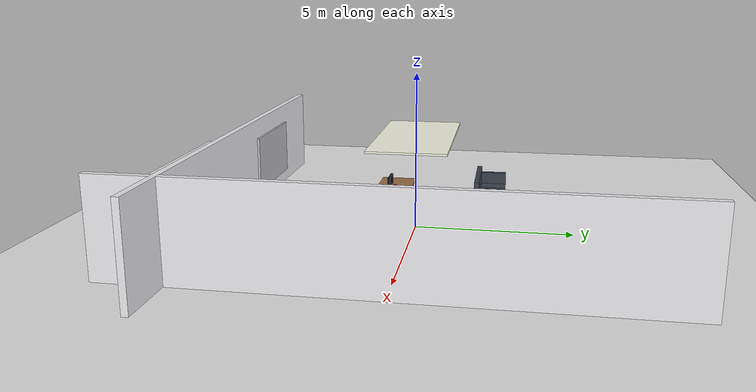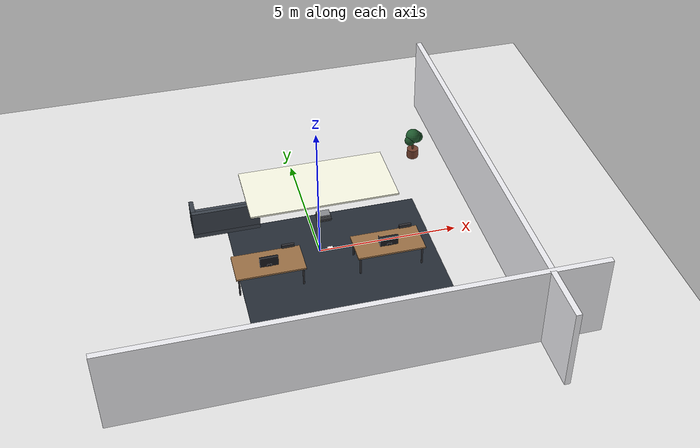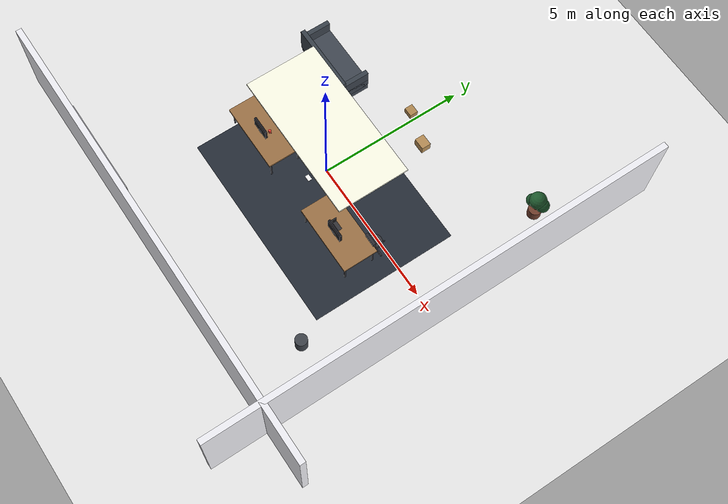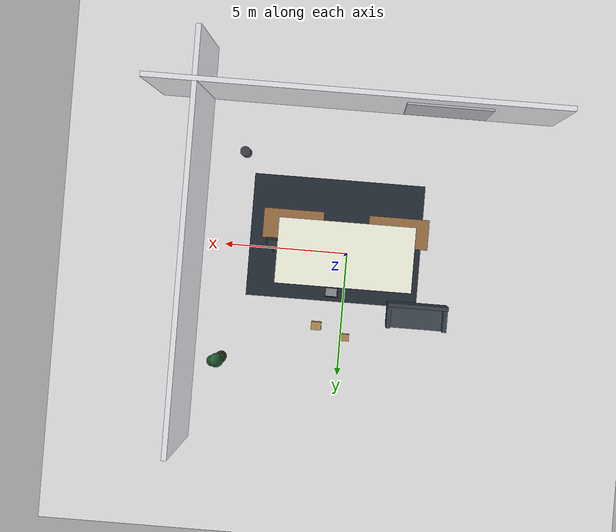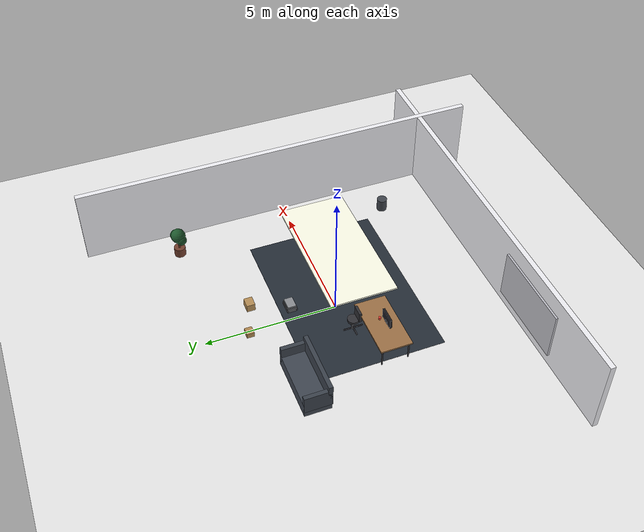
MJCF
<mujoco model="openai_busy_office">
  <compiler angle="degree" coordinate="local" inertiafromgeom="true"/>
  <option timestep="0.002" gravity="0 0 -9.81" integrator="RK4"/>
  <size njmax="2000" nconmax="400"/>

  <asset>
    <!-- No textures/materials per instructions -->
  </asset>

  <default>
    <joint damping="1" armature="0.01" limited="false"/>
    <geom contype="1" conaffinity="1" condim="4" friction="0.9 0.1 0.01" density="500" margin="0.002" rgba="0.7 0.7 0.7 1"/>
  </default>

  <worldbody>
    <!-- Floor -->
    <geom name="floor" type="plane" pos="0 0 0" size="20 20 0.1" rgba="0.92 0.92 0.92 1" friction="1 0.2 0.02"/>

    <!-- Back wall -->
    <body name="wall_back" pos="0 -6 1.5">
      <geom name="wall_back_geom" type="box" pos="0 0 0" size="8 0.1 1.5" rgba="0.95 0.95 0.97 1" contype="0" conaffinity="0"/>
    </body>

    <!-- Side wall -->
    <body name="wall_side" pos="6 0 1.5">
      <geom name="wall_side_geom" type="box" pos="0 0 0" size="0.1 8 1.5" rgba="0.95 0.95 0.97 1" contype="0" conaffinity="0"/>
    </body>

    <!-- Ceiling light panel (visual only) -->
    <body name="ceiling_light" pos="0 0 3.0">
      <geom name="ceiling_panel" type="box" pos="0 0 0" size="2.5 1.2 0.03" rgba="1 1 0.92 1" contype="0" conaffinity="0"/>
    </body>

    <!-- Large rug -->
    <body name="rug" pos="0.5 -0.5 0.005">
      <geom name="rug_geom" type="box" pos="0 0 0" size="3.5 2.5 0.005" rgba="0.15 0.18 0.22 1" friction="1.2 0.3 0.03"/>
    </body>

    <!-- Shared desk 1 -->
    <body name="desk1" pos="-2.0 -1.0 0">
      <geom name="desk1_top" type="box" pos="0 0 0.76" size="1.2 0.6 0.03" rgba="0.62 0.45 0.28 1" contype="0" conaffinity="0"/>
      <geom name="desk1_leg1" type="cylinder" pos="1.1 0.5 0.38" size="0.03 0.38" rgba="0.18 0.18 0.2 1" contype="0" conaffinity="0"/>
      <geom name="desk1_leg2" type="cylinder" pos="-1.1 0.5 0.38" size="0.03 0.38" rgba="0.18 0.18 0.2 1" contype="0" conaffinity="0"/>
      <geom name="desk1_leg3" type="cylinder" pos="1.1 -0.5 0.38" size="0.03 0.38" rgba="0.18 0.18 0.2 1" contype="0" conaffinity="0"/>
      <geom name="desk1_leg4" type="cylinder" pos="-1.1 -0.5 0.38" size="0.03 0.38" rgba="0.18 0.18 0.2 1" contype="0" conaffinity="0"/>
    </body>

    <!-- Shared desk 2 -->
    <body name="desk2" pos="2.2 -1.0 0">
      <geom name="desk2_top" type="box" pos="0 0 0.76" size="1.2 0.6 0.03" rgba="0.62 0.45 0.28 1" contype="0" conaffinity="0"/>
      <geom name="desk2_leg1" type="cylinder" pos="1.1 0.5 0.38" size="0.03 0.38" rgba="0.18 0.18 0.2 1" contype="0" conaffinity="0"/>
      <geom name="desk2_leg2" type="cylinder" pos="-1.1 0.5 0.38" size="0.03 0.38" rgba="0.18 0.18 0.2 1" contype="0" conaffinity="0"/>
      <geom name="desk2_leg3" type="cylinder" pos="1.1 -0.5 0.38" size="0.03 0.38" rgba="0.18 0.18 0.2 1" contype="0" conaffinity="0"/>
      <geom name="desk2_leg4" type="cylinder" pos="-1.1 -0.5 0.38" size="0.03 0.38" rgba="0.18 0.18 0.2 1" contype="0" conaffinity="0"/>
    </body>

    <!-- Monitors (static props on desks; visual only) -->
    <body name="monitor1" pos="-2.0 -1.15 0.79">
      <geom name="monitor1_screen" type="box" pos="0 0 0.18" size="0.30 0.03 0.18" rgba="0.05 0.05 0.06 1" contype="0" conaffinity="0"/>
      <geom name="monitor1_bezel" type="box" pos="0 0 0.18" size="0.32 0.04 0.20" rgba="0.1 0.1 0.12 1" contype="0" conaffinity="0"/>
      <geom name="monitor1_stand" type="box" pos="0 0 0.05" size="0.08 0.05 0.05" rgba="0.12 0.12 0.14 1" contype="0" conaffinity="0"/>
    </body>

    <body name="monitor2" pos="2.2 -1.15 0.79">
      <geom name="monitor2_screen" type="box" pos="0 0 0.18" size="0.30 0.03 0.18" rgba="0.05 0.05 0.06 1" contype="0" conaffinity="0"/>
      <geom name="monitor2_bezel" type="box" pos="0 0 0.18" size="0.32 0.04 0.20" rgba="0.1 0.1 0.12 1" contype="0" conaffinity="0"/>
      <geom name="monitor2_stand" type="box" pos="0 0 0.05" size="0.08 0.05 0.05" rgba="0.12 0.12 0.14 1" contype="0" conaffinity="0"/>
    </body>

    <!-- Whiteboard -->
    <body name="whiteboard" pos="-3.5 -5.85 1.4">
      <geom name="whiteboard_panel" type="box" pos="0 0 0" size="1.6 0.03 0.9" rgba="0.98 0.98 0.99 1" contype="0" conaffinity="0"/>
      <geom name="whiteboard_frame" type="box" pos="0 0 0" size="1.65 0.04 0.95" rgba="0.75 0.75 0.78 1" contype="0" conaffinity="0"/>
    </body>

    <!-- Couch -->
    <body name="couch" pos="-3.0 2.3 0">
      <geom name="couch_base" type="box" pos="0 0 0.25" size="1.2 0.5 0.25" rgba="0.25 0.28 0.32 1" contype="0" conaffinity="0"/>
      <geom name="couch_back" type="box" pos="0 -0.45 0.65" size="1.2 0.08 0.45" rgba="0.23 0.26 0.30 1" contype="0" conaffinity="0"/>
      <geom name="couch_arm1" type="box" pos="1.12 0 0.55" size="0.08 0.5 0.35" rgba="0.23 0.26 0.30 1" contype="0" conaffinity="0"/>
      <geom name="couch_arm2" type="box" pos="-1.12 0 0.55" size="0.08 0.5 0.35" rgba="0.23 0.26 0.30 1" contype="0" conaffinity="0"/>
    </body>

    <!-- Plant (static pot + trunk/leaves visual) -->
    <body name="plant" pos="4.8 4.6 0">
      <geom name="plant_pot" type="cylinder" pos="0 0 0.18" size="0.22 0.18" rgba="0.45 0.25 0.18 1" contype="0" conaffinity="0"/>
      <geom name="plant_trunk" type="cylinder" pos="0 0 0.55" size="0.04 0.35" rgba="0.35 0.22 0.12 1" contype="0" conaffinity="0"/>
      <geom name="plant_canopy" type="sphere" pos="0 0 0.95" size="0.28" rgba="0.12 0.35 0.18 1" contype="0" conaffinity="0"/>
      <geom name="plant_canopy2" type="sphere" pos="0.18 0.05 0.85" size="0.22" rgba="0.10 0.32 0.16 1" contype="0" conaffinity="0"/>
      <geom name="plant_canopy3" type="sphere" pos="-0.15 -0.08 0.82" size="0.20" rgba="0.10 0.30 0.15 1" contype="0" conaffinity="0"/>
    </body>

    <!-- Rolling chairs (static, but could be made dynamic; keeping static for stability) -->
    <body name="chair1" pos="-1.2 -0.2 0">
      <geom name="chair1_seat" type="cylinder" pos="0 0 0.48" size="0.22 0.05" rgba="0.2 0.2 0.22 1" contype="0" conaffinity="0"/>
      <geom name="chair1_back" type="box" pos="0 -0.18 0.70" size="0.22 0.05 0.20" rgba="0.18 0.18 0.2 1" contype="0" conaffinity="0"/>
      <geom name="chair1_pole" type="cylinder" pos="0 0 0.25" size="0.04 0.25" rgba="0.12 0.12 0.14 1" contype="0" conaffinity="0"/>
      <geom name="chair1_base1" type="capsule" pos="0 0 0.05" fromto="0 0 0.05 0.35 0 0.05" size="0.03" rgba="0.12 0.12 0.14 1" contype="0" conaffinity="0"/>
      <geom name="chair1_base2" type="capsule" pos="0 0 0.05" fromto="0 0 0.05 -0.35 0 0.05" size="0.03" rgba="0.12 0.12 0.14 1" contype="0" conaffinity="0"/>
      <geom name="chair1_base3" type="capsule" pos="0 0 0.05" fromto="0 0 0.05 0 0.35 0.05" size="0.03" rgba="0.12 0.12 0.14 1" contype="0" conaffinity="0"/>
      <geom name="chair1_base4" type="capsule" pos="0 0 0.05" fromto="0 0 0.05 0 -0.35 0.05" size="0.03" rgba="0.12 0.12 0.14 1" contype="0" conaffinity="0"/>
    </body>

    <body name="chair2" pos="3.0 -0.2 0">
      <geom name="chair2_seat" type="cylinder" pos="0 0 0.48" size="0.22 0.05" rgba="0.2 0.2 0.22 1" contype="0" conaffinity="0"/>
      <geom name="chair2_back" type="box" pos="0 -0.18 0.70" size="0.22 0.05 0.20" rgba="0.18 0.18 0.2 1" contype="0" conaffinity="0"/>
      <geom name="chair2_pole" type="cylinder" pos="0 0 0.25" size="0.04 0.25" rgba="0.12 0.12 0.14 1" contype="0" conaffinity="0"/>
      <geom name="chair2_base1" type="capsule" pos="0 0 0.05" fromto="0 0 0.05 0.35 0 0.05" size="0.03" rgba="0.12 0.12 0.14 1" contype="0" conaffinity="0"/>
      <geom name="chair2_base2" type="capsule" pos="0 0 0.05" fromto="0 0 0.05 -0.35 0 0.05" size="0.03" rgba="0.12 0.12 0.14 1" contype="0" conaffinity="0"/>
      <geom name="chair2_base3" type="capsule" pos="0 0 0.05" fromto="0 0 0.05 0 0.35 0.05" size="0.03" rgba="0.12 0.12 0.14 1" contype="0" conaffinity="0"/>
      <geom name="chair2_base4" type="capsule" pos="0 0 0.05" fromto="0 0 0.05 0 -0.35 0.05" size="0.03" rgba="0.12 0.12 0.14 1" contype="0" conaffinity="0"/>
    </body>

    <!-- Moving props (with freejoint) -->
    <body name="coffee_mug" pos="-1.8 -0.95 0.82">
      <freejoint name="coffee_mug_free"/>
      <geom name="mug_body" type="cylinder" pos="0 0 0.05" size="0.045 0.05" rgba="0.95 0.25 0.20 1" density="300"/>
      <geom name="mug_handle" type="capsule" fromto="0.045 0 0.05 0.085 0 0.05" size="0.012" rgba="0.95 0.25 0.20 1" density="300"/>
    </body>

    <body name="laptop" pos="2.05 -1.0 0.80" quat="1 0 0 0">
      <freejoint name="laptop_free"/>
      <geom name="laptop_base" type="box" pos="0 0 0.01" size="0.16 0.11 0.01" rgba="0.2 0.2 0.22 1" density="400"/>
      <geom name="laptop_screen" type="box" pos="-0.16 0 0.13" size="0.01 0.11 0.12" rgba="0.08 0.08 0.09 1" density="200"/>
    </body>

    <body name="paper_stack" pos="0.2 -0.8 0.78">
      <freejoint name="paper_stack_free"/>
      <geom name="paper_stack_geom" type="box" pos="0 0 0.01" size="0.10 0.07 0.01" rgba="0.98 0.98 0.98 1" density="200"/>
    </body>

    <!-- Trash bin (static) -->
    <body name="trash_bin" pos="4.4 -3.8 0">
      <geom name="bin_outer" type="cylinder" pos="0 0 0.25" size="0.20 0.25" rgba="0.25 0.27 0.30 1" contype="0" conaffinity="0"/>
    </body>

    <!-- Small rolling robot cart (moving) -->
    <body name="robot_cart" pos="0.5 1.6 0.10">
      <freejoint name="robot_cart_free"/>
      <geom name="cart_base" type="box" pos="0 0 0.10" size="0.25 0.18 0.10" rgba="0.35 0.36 0.38 1" density="600"/>
      <geom name="cart_top" type="box" pos="0 0 0.24" size="0.23 0.16 0.02" rgba="0.55 0.56 0.58 1" density="300"/>
      <geom name="cart_bumper" type="capsule" fromto="-0.25 -0.18 0.08 0.25 -0.18 0.08" size="0.03" rgba="0.20 0.20 0.22 1" density="200"/>
      <geom name="cart_bumper2" type="capsule" fromto="-0.25 0.18 0.08 0.25 0.18 0.08" size="0.03" rgba="0.20 0.20 0.22 1" density="200"/>
    </body>

    <!-- A few moving boxes to imply activity -->
    <body name="shipping_box1" pos="1.0 3.0 0.15">
      <freejoint name="shipping_box1_free"/>
      <geom name="shipping_box1_geom" type="box" pos="0 0 0.15" size="0.20 0.16 0.15" rgba="0.72 0.56 0.34 1" density="250"/>
    </body>

    <body name="shipping_box2" pos="-0.2 3.4 0.10">
      <freejoint name="shipping_box2_free"/>
      <geom name="shipping_box2_geom" type="box" pos="0 0 0.10" size="0.16 0.14 0.10" rgba="0.70 0.54 0.32 1" density="250"/>
    </body>

    <!-- Camera -->
    <camera name="main_cam" pos="0 8 3.2" quat="0.9659 0.2588 0 0" fovy="55"/>
  </worldbody>

  <actuator>
    <!-- No actuators; scene-only -->
  </actuator>
</mujoco>
